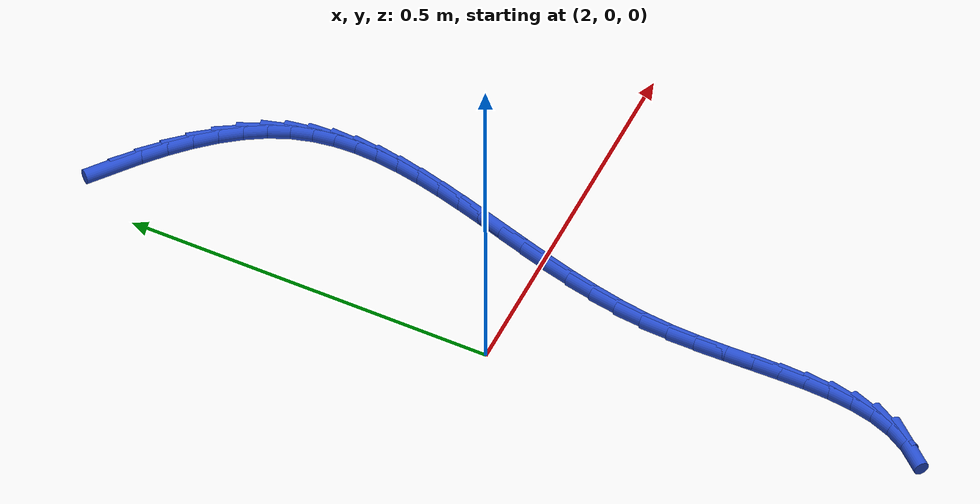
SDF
<sdf version="1.6">
 <world name="default">
  <model name="ground_plane">
   <static>1</static>
   <link name="link">
    <collision name="collision">
     <geometry><plane><normal>0 0 1</normal><size>100 100</size></plane></geometry>
     <surface><friction><ode><mu>100</mu><mu2>50</mu2></ode></friction></surface>
    </collision>
    <visual name="visual">
     <cast_shadows>0</cast_shadows>
     <geometry><plane><normal>0 0 1</normal><size>100 100</size></plane></geometry>
     <material>
      <script><uri>file://media/materials/scripts/gazebo.material</uri><name>Gazebo/WhiteGlow</name></script>
     </material>
    </visual>
   </link>
  </model>
  <model name="line">
   <link name="link_88">
    <pose>2.0658039507329984 0.5611436765285392 0.01 0 1.57 -0.671350451260856</pose>
    <collision name="collision">
     <geometry><cylinder><radius>0.01</radius><length>0.08</length></cylinder></geometry>
    </collision>
    <visual name="visual">
     <material>
      <script><name>Gazebo/Blue</name><uri>file://media/materials/scripts/gazebo.material</uri></script>
     </material>
     <geometry><cylinder><radius>0.01</radius><length>0.08</length></cylinder></geometry>
    </visual>
   </link>
   <link name="link_89">
    <pose>2.09455364003694 0.5383033531859526 0.01 0 1.57 -0.7201723247891287</pose>
    <collision name="collision">
     <geometry><cylinder><radius>0.01</radius><length>0.08</length></cylinder></geometry>
    </collision>
    <visual name="visual">
     <material>
      <script><name>Gazebo/Blue</name><uri>file://media/materials/scripts/gazebo.material</uri></script>
     </material>
     <geometry><cylinder><radius>0.01</radius><length>0.08</length></cylinder></geometry>
    </visual>
   </link>
   <link name="link_90">
    <pose>2.1216374686752286 0.5145407377719112 0.01 0 1.57 -0.7790508077704541</pose>
    <collision name="collision">
     <geometry><cylinder><radius>0.01</radius><length>0.08</length></cylinder></geometry>
    </collision>
    <visual name="visual">
     <material>
      <script><name>Gazebo/Blue</name><uri>file://media/materials/scripts/gazebo.material</uri></script>
     </material>
     <geometry><cylinder><radius>0.01</radius><length>0.08</length></cylinder></geometry>
    </visual>
   </link>
   <link name="link_91">
    <pose>2.1466215108405216 0.4898718645511081 0.01 0 1.57 -0.8500611470909872</pose>
    <collision name="collision">
     <geometry><cylinder><radius>0.01</radius><length>0.08</length></cylinder></geometry>
    </collision>
    <visual name="visual">
     <material>
      <script><name>Gazebo/Blue</name><uri>file://media/materials/scripts/gazebo.material</uri></script>
     </material>
     <geometry><cylinder><radius>0.01</radius><length>0.08</length></cylinder></geometry>
    </visual>
   </link>
   <link name="link_92">
    <pose>2.1690718407254765 0.4643127677882354 0.01 0 1.57 -0.9356339256955987</pose>
    <collision name="collision">
     <geometry><cylinder><radius>0.01</radius><length>0.08</length></cylinder></geometry>
    </collision>
    <visual name="visual">
     <material>
      <script><name>Gazebo/Blue</name><uri>file://media/materials/scripts/gazebo.material</uri></script>
     </material>
     <geometry><cylinder><radius>0.01</radius><length>0.08</length></cylinder></geometry>
    </visual>
   </link>
   <link name="link_93">
    <pose>2.1885545325227507 0.43787948174798624 0.01 0 1.57 -1.0383283587970134</pose>
    <collision name="collision">
     <geometry><cylinder><radius>0.01</radius><length>0.08</length></cylinder></geometry>
    </collision>
    <visual name="visual">
     <material>
      <script><name>Gazebo/Blue</name><uri>file://media/materials/scripts/gazebo.material</uri></script>
     </material>
     <geometry><cylinder><radius>0.01</radius><length>0.08</length></cylinder></geometry>
    </visual>
   </link>
   <link name="link_94">
    <pose>2.2046356604250015 0.41058804069505334 0.01 0 1.57 -1.1601520468243238</pose>
    <collision name="collision">
     <geometry><cylinder><radius>0.01</radius><length>0.08</length></cylinder></geometry>
    </collision>
    <visual name="visual">
     <material>
      <script><name>Gazebo/Blue</name><uri>file://media/materials/scripts/gazebo.material</uri></script>
     </material>
     <geometry><cylinder><radius>0.01</radius><length>0.08</length></cylinder></geometry>
    </visual>
   </link>
   <link name="link_95">
    <pose>2.216884911089515 0.3824545459101455 0.01 0 1.57 -1.2925234013386269</pose>
    <collision name="collision">
     <geometry><cylinder><radius>0.01</radius><length>0.08</length></cylinder></geometry>
    </collision>
    <visual name="visual">
     <material>
      <script><name>Gazebo/Blue</name><uri>file://media/materials/scripts/gazebo.material</uri></script>
     </material>
     <geometry><cylinder><radius>0.01</radius><length>0.08</length></cylinder></geometry>
    </visual>
   </link>
   <link name="link_96">
    <pose>2.225156692511394 0.3535003806329238 0.01 0 1.57 -1.416234422054511</pose>
    <collision name="collision">
     <geometry><cylinder><radius>0.01</radius><length>0.08</length></cylinder></geometry>
    </collision>
    <visual name="visual">
     <material>
      <script><name>Gazebo/Blue</name><uri>file://media/materials/scripts/gazebo.material</uri></script>
     </material>
     <geometry><cylinder><radius>0.01</radius><length>0.08</length></cylinder></geometry>
    </visual>
   </link>
   <link name="link_97">
    <pose>2.2297910130240233 0.3237559366342429 0.01 0 1.57 -1.5254462885963518</pose>
    <collision name="collision">
     <geometry><cylinder><radius>0.01</radius><length>0.08</length></cylinder></geometry>
    </collision>
    <visual name="visual">
     <material>
      <script><name>Gazebo/Blue</name><uri>file://media/materials/scripts/gazebo.material</uri></script>
     </material>
     <geometry><cylinder><radius>0.01</radius><length>0.08</length></cylinder></geometry>
    </visual>
   </link>
   <link name="link_98">
    <pose>2.231175294821785 0.29325248527504894 0.01 0 1.57 1.5234964256397687</pose>
    <collision name="collision">
     <geometry><cylinder><radius>0.01</radius><length>0.08</length></cylinder></geometry>
    </collision>
    <visual name="visual">
     <material>
      <script><name>Gazebo/Blue</name><uri>file://media/materials/scripts/gazebo.material</uri></script>
     </material>
     <geometry><cylinder><radius>0.01</radius><length>0.08</length></cylinder></geometry>
    </visual>
   </link>
   <link name="link_99">
    <pose>2.229696960099063 0.2620212979162888 0.01 0 1.57 1.447595721715662</pose>
    <collision name="collision">
     <geometry><cylinder><radius>0.01</radius><length>0.08</length></cylinder></geometry>
    </collision>
    <visual name="visual">
     <material>
      <script><name>Gazebo/Blue</name><uri>file://media/materials/scripts/gazebo.material</uri></script>
     </material>
     <geometry><cylinder><radius>0.01</radius><length>0.08</length></cylinder></geometry>
    </visual>
   </link>
   <link name="link_100">
    <pose>2.2257434310502413 0.23009364591890857 0.01 0 1.57 1.3875197181808439</pose>
    <collision name="collision">
     <geometry><cylinder><radius>0.01</radius><length>0.08</length></cylinder></geometry>
    </collision>
    <visual name="visual">
     <material>
      <script><name>Gazebo/Blue</name><uri>file://media/materials/scripts/gazebo.material</uri></script>
     </material>
     <geometry><cylinder><radius>0.01</radius><length>0.08</length></cylinder></geometry>
    </visual>
   </link>
   <link name="link_101">
    <pose>2.2197021298697015 0.19750080064385406 0.01 0 1.57 1.3418858383694727</pose>
    <collision name="collision">
     <geometry><cylinder><radius>0.01</radius><length>0.08</length></cylinder></geometry>
    </collision>
    <visual name="visual">
     <material>
      <script><name>Gazebo/Blue</name><uri>file://media/materials/scripts/gazebo.material</uri></script>
     </material>
     <geometry><cylinder><radius>0.01</radius><length>0.08</length></cylinder></geometry>
    </visual>
   </link>
   <link name="link_102">
    <pose>2.2119604787518305 0.16427403345207253 0.01 0 1.57 1.3092723808303006</pose>
    <collision name="collision">
     <geometry><cylinder><radius>0.01</radius><length>0.08</length></cylinder></geometry>
    </collision>
    <visual name="visual">
     <material>
      <script><name>Gazebo/Blue</name><uri>file://media/materials/scripts/gazebo.material</uri></script>
     </material>
     <geometry><cylinder><radius>0.01</radius><length>0.08</length></cylinder></geometry>
    </visual>
   </link>
   <link name="link_103">
    <pose>2.20290589989101 0.13044461570450988 0.01 0 1.57 1.2884355854980836</pose>
    <collision name="collision">
     <geometry><cylinder><radius>0.01</radius><length>0.08</length></cylinder></geometry>
    </collision>
    <visual name="visual">
     <material>
      <script><name>Gazebo/Blue</name><uri>file://media/materials/scripts/gazebo.material</uri></script>
     </material>
     <geometry><cylinder><radius>0.01</radius><length>0.08</length></cylinder></geometry>
    </visual>
   </link>
   <link name="link_104">
    <pose>2.192925815481623 0.09604381876211238 0.01 0 1.57 1.2783972815437001</pose>
    <collision name="collision">
     <geometry><cylinder><radius>0.01</radius><length>0.08</length></cylinder></geometry>
    </collision>
    <visual name="visual">
     <material>
      <script><name>Gazebo/Blue</name><uri>file://media/materials/scripts/gazebo.material</uri></script>
     </material>
     <geometry><cylinder><radius>0.01</radius><length>0.08</length></cylinder></geometry>
    </visual>
   </link>
   <link name="link_105">
    <pose>2.1824076477180547 0.061102913985826485 0.01 0 1.57 1.278462269759907</pose>
    <collision name="collision">
     <geometry><cylinder><radius>0.01</radius><length>0.08</length></cylinder></geometry>
    </collision>
    <visual name="visual">
     <material>
      <script><name>Gazebo/Blue</name><uri>file://media/materials/scripts/gazebo.material</uri></script>
     </material>
     <geometry><cylinder><radius>0.01</radius><length>0.08</length></cylinder></geometry>
    </visual>
   </link>
   <link name="link_106">
    <pose>2.1717388187946876 0.025653172736597597 0.01 0 1.57 1.2882013396320007</pose>
    <collision name="collision">
     <geometry><cylinder><radius>0.01</radius><length>0.08</length></cylinder></geometry>
    </collision>
    <visual name="visual">
     <material>
      <script><name>Gazebo/Blue</name><uri>file://media/materials/scripts/gazebo.material</uri></script>
     </material>
     <geometry><cylinder><radius>0.01</radius><length>0.08</length></cylinder></geometry>
    </visual>
   </link>
   <link name="link_107">
    <pose>2.161306750905906 -0.010274133624626286 0.01 0 1.57 1.307417316386409</pose>
    <collision name="collision">
     <geometry><cylinder><radius>0.01</radius><length>0.08</length></cylinder></geometry>
    </collision>
    <visual name="visual">
     <material>
      <script><name>Gazebo/Blue</name><uri>file://media/materials/scripts/gazebo.material</uri></script>
     </material>
     <geometry><cylinder><radius>0.01</radius><length>0.08</length></cylinder></geometry>
    </visual>
   </link>
   <link name="link_108">
    <pose>2.151498866246093 -0.04664773373689957 0.01 0 1.57 1.3360994279658212</pose>
    <collision name="collision">
     <geometry><cylinder><radius>0.01</radius><length>0.08</length></cylinder></geometry>
    </collision>
    <visual name="visual">
     <material>
      <script><name>Gazebo/Blue</name><uri>file://media/materials/scripts/gazebo.material</uri></script>
     </material>
     <geometry><cylinder><radius>0.01</radius><length>0.08</length></cylinder></geometry>
    </visual>
   </link>
   <link name="link_109">
    <pose>2.142702587009633 -0.08343635623927606 0.01 0 1.57 1.3743638023819589</pose>
    <collision name="collision">
     <geometry><cylinder><radius>0.01</radius><length>0.08</length></cylinder></geometry>
    </collision>
    <visual name="visual">
     <material>
      <script><name>Gazebo/Blue</name><uri>file://media/materials/scripts/gazebo.material</uri></script>
     </material>
     <geometry><cylinder><radius>0.01</radius><length>0.08</length></cylinder></geometry>
    </visual>
   </link>
   <link name="link_110">
    <pose>2.1353053353909086 -0.1206087297708093 0.01 0 1.57 1.422373614519556</pose>
    <collision name="collision">
     <geometry><cylinder><radius>0.01</radius><length>0.08</length></cylinder></geometry>
    </collision>
    <visual name="visual">
     <material>
      <script><name>Gazebo/Blue</name><uri>file://media/materials/scripts/gazebo.material</uri></script>
     </material>
     <geometry><cylinder><radius>0.01</radius><length>0.08</length></cylinder></geometry>
    </visual>
   </link>
   <link name="link_111">
    <pose>2.129694533584304 -0.158133582970553 0.01 0 1.57 1.4800847481019042</pose>
    <collision name="collision">
     <geometry><cylinder><radius>0.01</radius><length>0.08</length></cylinder></geometry>
    </collision>
    <visual name="visual">
     <material>
      <script><name>Gazebo/Blue</name><uri>file://media/materials/scripts/gazebo.material</uri></script>
     </material>
     <geometry><cylinder><radius>0.01</radius><length>0.08</length></cylinder></geometry>
    </visual>
   </link>
   <link name="link_112">
    <pose>2.126252129480413 -0.19597833140360665 0.01 0 1.57 1.5368110350944997</pose>
    <collision name="collision">
     <geometry><cylinder><radius>0.01</radius><length>0.08</length></cylinder></geometry>
    </collision>
    <visual name="visual">
     <material>
      <script><name>Gazebo/Blue</name><uri>file://media/materials/scripts/gazebo.material</uri></script>
     </material>
     <geometry><cylinder><radius>0.01</radius><length>0.08</length></cylinder></geometry>
    </visual>
   </link>
   <link name="link_113">
    <pose>2.1249589720815285 -0.2340141825100029 0.01 0 1.57 -1.5663305580565792</pose>
    <collision name="collision">
     <geometry><cylinder><radius>0.01</radius><length>0.08</length></cylinder></geometry>
    </collision>
    <visual name="visual">
     <material>
      <script><name>Gazebo/Blue</name><uri>file://media/materials/scripts/gazebo.material</uri></script>
     </material>
     <geometry><cylinder><radius>0.01</radius><length>0.08</length></cylinder></geometry>
    </visual>
   </link>
   <link name="link_114">
    <pose>2.1251283957666245 -0.27195223276403874 0.01 0 1.57 -1.5472977705333573</pose>
    <collision name="collision">
     <geometry><cylinder><radius>0.01</radius><length>0.08</length></cylinder></geometry>
    </collision>
    <visual name="visual">
     <material>
      <script><name>Gazebo/Blue</name><uri>file://media/materials/scripts/gazebo.material</uri></script>
     </material>
     <geometry><cylinder><radius>0.01</radius><length>0.08</length></cylinder></geometry>
    </visual>
   </link>
   <link name="link_115">
    <pose>2.126010604739735 -0.30948843615035765 0.01 0 1.57 -1.5478519059858808</pose>
    <collision name="collision">
     <geometry><cylinder><radius>0.01</radius><length>0.08</length></cylinder></geometry>
    </collision>
    <visual name="visual">
     <material>
      <script><name>Gazebo/Blue</name><uri>file://media/materials/scripts/gazebo.material</uri></script>
     </material>
     <geometry><cylinder><radius>0.01</radius><length>0.08</length></cylinder></geometry>
    </visual>
   </link>
   <link name="link_116">
    <pose>2.1268558032048968 -0.3463187466536026 0.01 0 1.57 -1.569166189894955</pose>
    <collision name="collision">
     <geometry><cylinder><radius>0.01</radius><length>0.08</length></cylinder></geometry>
    </collision>
    <visual name="visual">
     <material>
      <script><name>Gazebo/Blue</name><uri>file://media/materials/scripts/gazebo.material</uri></script>
     </material>
     <geometry><cylinder><radius>0.01</radius><length>0.08</length></cylinder></geometry>
    </visual>
   </link>
   <link name="link_117">
    <pose>2.126914195366142 -0.3821391182584172 0.01 0 1.57 1.5279837687304305</pose>
    <collision name="collision">
     <geometry><cylinder><radius>0.01</radius><length>0.08</length></cylinder></geometry>
    </collision>
    <visual name="visual">
     <material>
      <script><name>Gazebo/Blue</name><uri>file://media/materials/scripts/gazebo.material</uri></script>
     </material>
     <geometry><cylinder><radius>0.01</radius><length>0.08</length></cylinder></geometry>
    </visual>
   </link>
   <link name="link_118">
    <pose>2.1254359854275062 -0.4166455049494442 0.01 0 1.57 1.456826082717885</pose>
    <collision name="collision">
     <geometry><cylinder><radius>0.01</radius><length>0.08</length></cylinder></geometry>
    </collision>
    <visual name="visual">
     <material>
      <script><name>Gazebo/Blue</name><uri>file://media/materials/scripts/gazebo.material</uri></script>
     </material>
     <geometry><cylinder><radius>0.01</radius><length>0.08</length></cylinder></geometry>
    </visual>
   </link>
   <link name="link_119">
    <pose>2.1216713775930236 -0.44953386071132795 0.01 0 1.57 1.354608896806453</pose>
    <collision name="collision">
     <geometry><cylinder><radius>0.01</radius><length>0.08</length></cylinder></geometry>
    </collision>
    <visual name="visual">
     <material>
      <script><name>Gazebo/Blue</name><uri>file://media/materials/scripts/gazebo.material</uri></script>
     </material>
     <geometry><cylinder><radius>0.01</radius><length>0.08</length></cylinder></geometry>
    </visual>
   </link>
   <link name="link_120">
    <pose>2.1148705760667292 -0.48050013952871007 0.01 0 1.57 1.217857637227364</pose>
    <collision name="collision">
     <geometry><cylinder><radius>0.01</radius><length>0.08</length></cylinder></geometry>
    </collision>
    <visual name="visual">
     <material>
      <script><name>Gazebo/Blue</name><uri>file://media/materials/scripts/gazebo.material</uri></script>
     </material>
     <geometry><cylinder><radius>0.01</radius><length>0.08</length></cylinder></geometry>
    </visual>
   </link>
   <link name="link_121">
    <pose>2.1042837850526577 -0.5092402953862347 0.01 0 1.57 1.0474770704143739</pose>
    <collision name="collision">
     <geometry><cylinder><radius>0.01</radius><length>0.08</length></cylinder></geometry>
    </collision>
    <visual name="visual">
     <material>
      <script><name>Gazebo/Blue</name><uri>file://media/materials/scripts/gazebo.material</uri></script>
     </material>
     <geometry><cylinder><radius>0.01</radius><length>0.08</length></cylinder></geometry>
    </visual>
   </link>
   <link name="link_122">
    <pose>2.089161208754843 -0.535450282268545 0.01 0 1.57 0.8632487198951294</pose>
    <collision name="collision">
     <geometry><cylinder><radius>0.01</radius><length>0.08</length></cylinder></geometry>
    </collision>
    <visual name="visual">
     <material>
      <script><name>Gazebo/Blue</name><uri>file://media/materials/scripts/gazebo.material</uri></script>
     </material>
     <geometry><cylinder><radius>0.01</radius><length>0.08</length></cylinder></geometry>
    </visual>
   </link>
  </model>
 </world>
</sdf>
